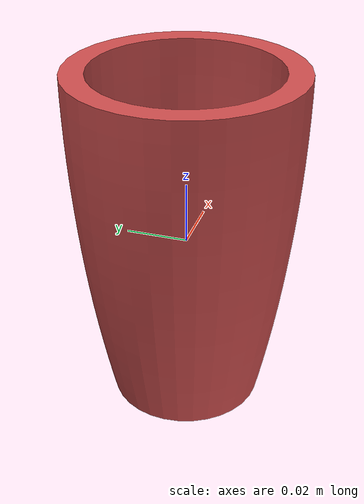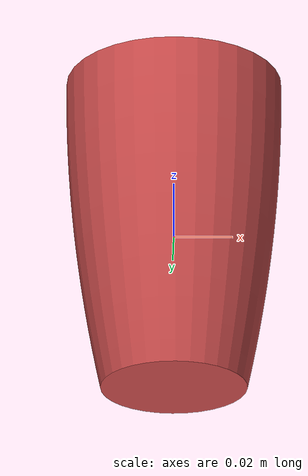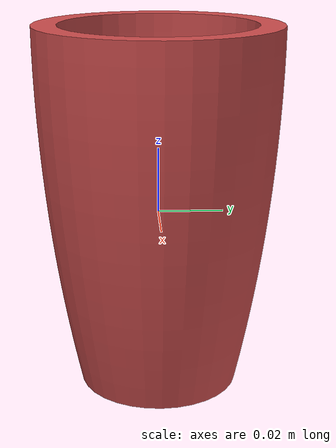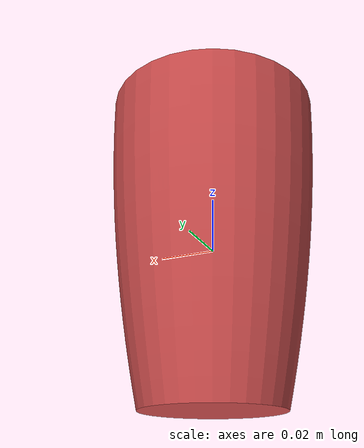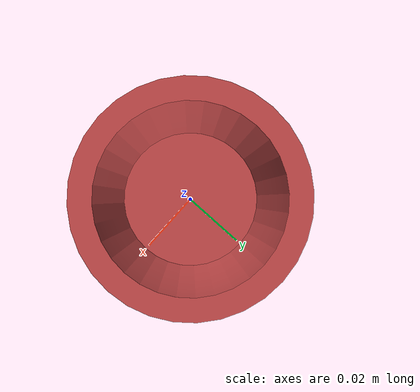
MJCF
<mujoco model="cup">
    <asset>
        <mesh name="cup_mesh" file="/home/olin/Robotics/Reinforcement Learning/obrlr/new_env/assets/objects/meshes/cup.stl" scale="1 1 1"/>
    </asset>

    <worldbody>
        <body>
            <body name="object">
                <geom type="mesh"
                      mesh="cup_mesh"
                      contype="1"
                      conaffinity="1"
                      rgba="0.8 0.3 0.3 1"
                      group="0"
                      condim="4"/>
            </body>
            <site name="bottom_site" pos="0 0 -0.05" size="0.005" rgba="0 0 0 0"/>
            <site name="top_site" pos="0 0 0.05" size="0.005" rgba="0 0 0 0"/>
            <site name="horizontal_radius_site" pos="0.05 0 0" size="0.005" rgba="0 0 0 0"/>
        </body>
    </worldbody>
</mujoco>
